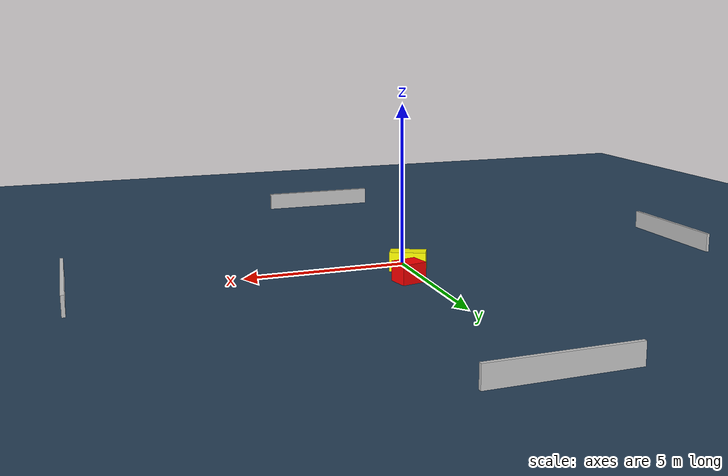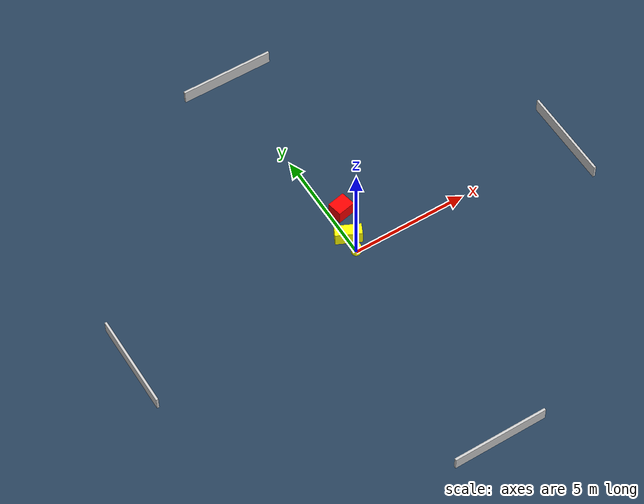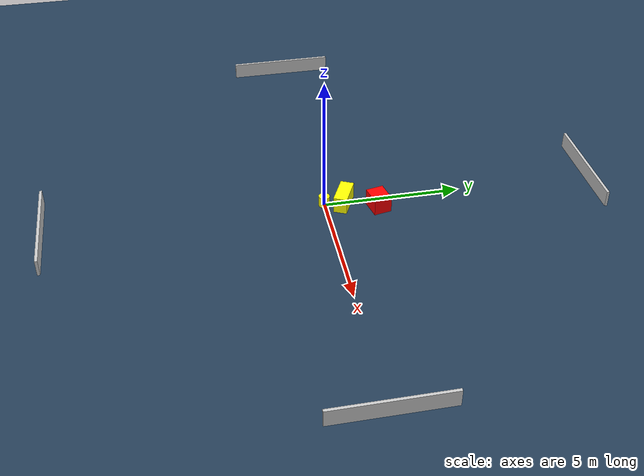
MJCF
<?xml version="1.0" ?>
<mujoco model="generated_environment">
  <option timestep="0.01" integrator="RK4" cone="elliptic"/>
  <default>
    <geom density="1"/>
  </default>
  <asset>
    <texture builtin="gradient" height="3072" name="skybox" rgb1="0.3 0.5 0.7" rgb2="0 0 0" type="skybox" width="512"/>
    <texture builtin="checker" height="300" name="groundplane" rgb1="0.2 0.3 0.4" rgb2="0.1 0.2 0.3" type="2d" width="300"/>
    <material name="groundplane" reflectance="0.2" texrepeat="5 5" texture="groundplane"/>
  </asset>
  <worldbody>
    <light dir="0 0 -1" directional="true" pos="0 0 1.5"/>
    <geom condim="3" friction="0.5 0.005 0.001" material="groundplane" name="floor" pos="0 0 0" size="0 0 0.05" type="plane"/>
    <body name="walls">
      <geom name="wall_1" condim="4" pos="-10.0 0.0 0.3" rgba="0.800000011920929 0.800000011920929 0.800000011920929 1.0" size="0.05 2.0 0.3" type="box"/>
      <geom name="wall_2" condim="4" pos="10.0 0.0 0.3" rgba="0.800000011920929 0.800000011920929 0.800000011920929 1.0" size="0.05 2.0 0.3" type="box"/>
      <geom name="wall_3" condim="4" pos="0.0 -10.0 0.3" rgba="0.800000011920929 0.800000011920929 0.800000011920929 1.0" size="2.0 0.05 0.3" type="box"/>
      <geom name="wall_4" condim="4" pos="0.0 10.0 0.3" rgba="0.800000011920929 0.800000011920929 0.800000011920929 1.0" size="2.0 0.05 0.3" type="box"/>
    </body>
    <body name="robot">
      <joint name="joint_x" type="slide" pos="0 0 0" axis="1 0 0"/>
      <joint name="joint_y" type="slide" pos="0 0 0" axis="0 1 0"/>
      <geom name="robot" type="cylinder" pos="0.0 0.0 0.2" size="0.2 0.2 0.0" mass="5.0" friction="1.0 0.005 0.0001" condim="4" rgba="1.0 1.0 0.0 1.0"/>
    </body>
    <body name="obstacle_1_movable">
      <geom name="obstacle_1_movable" condim="4" pos="0.07664507596070415 0.7031675990101659 0.3" euler="0 0 334.3136421700817" friction="0.0 0.005 0.001" rgba="1.0 1.0 0.0 1.0" size="0.5495903021112118 0.24383760847081584 0.3" type="box" mass="0.1"/>
      <joint type="free"/>
    </body>
    <body name="obstacle_2_static">
      <geom name="obstacle_2_static" condim="4" pos="0.49836975875379974 1.8970552757265604 0.3" euler="0 0 11.655322120339937" friction="0.0 0.005 0.001" rgba="1.0 0.0 0.0 1.0" size="0.3891033036447555 0.3248826238997701 0.3" type="box"/>
    </body>
  </worldbody>
  <actuator>
    <motor name="actuator_x" joint="joint_x" gear="1" ctrlrange="-1 1"/>
    <motor name="actuator_y" joint="joint_y" gear="1" ctrlrange="-1 1"/>
  </actuator>
</mujoco>
